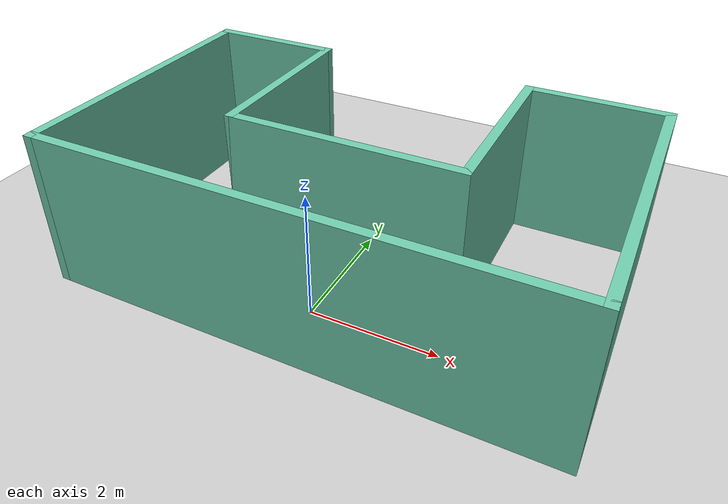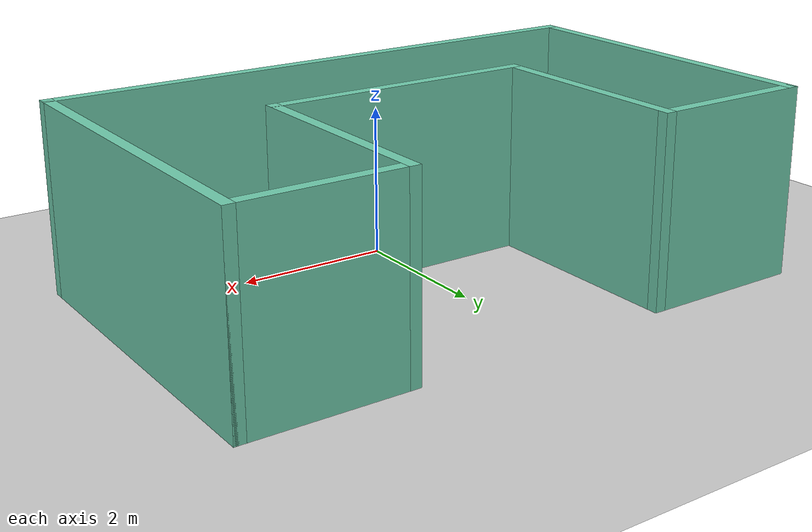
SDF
<sdf version="1.6">
 <world name="default">
  <light name="sun" type="directional">
   <pose>0 0 10 0 -0 0</pose>
   <diffuse>0.8 0.8 0.8 1</diffuse>
   <specular>0.2 0.2 0.2 1</specular>
   <attenuation>
    <range>1000</range>
    <constant>0.9</constant>
    <linear>0.01</linear>
    <quadratic>0.001</quadratic>
   </attenuation>
   <direction>-0.5 0.1 -0.9</direction>
  </light>
  <model name="ground_plane">
   <static>1</static>
   <link name="link">
    <collision name="collision">
     <geometry><plane><normal>0 0 1</normal><size>100 100</size></plane></geometry>
     <surface>
      <contact><collide_bitmask>65535</collide_bitmask></contact>
      <friction><ode><mu>100</mu><mu2>50</mu2></ode></friction>
     </surface>
    </collision>
    <visual name="visual">
     <cast_shadows>0</cast_shadows>
     <geometry><plane><normal>0 0 1</normal><size>100 100</size></plane></geometry>
     <material>
      <script><uri>file://media/materials/scripts/gazebo.material</uri><name>Gazebo/Grey</name></script>
     </material>
    </visual>
   </link>
  </model>
  <gravity>0 0 -9.8</gravity>
  <magnetic_field>6e-06 2.3e-05 -4.2e-05</magnetic_field>
  <atmosphere type="adiabatic"/>
  <physics name="default_physics" default="0" type="ode">
   <max_step_size>0.001</max_step_size>
   <real_time_factor>1</real_time_factor>
   <real_time_update_rate>1000</real_time_update_rate>
  </physics>
  <scene><ambient>0.4 0.4 0.4 1</ambient><background>0.7 0.7 0.7 1</background><shadows>1</shadows></scene>
  <spherical_coordinates>
   <surface_model>EARTH_WGS84</surface_model>
   <latitude_deg>0</latitude_deg>
   <longitude_deg>0</longitude_deg>
   <elevation>0</elevation>
   <heading_deg>0</heading_deg>
  </spherical_coordinates>
  <model name="smallU">
   <pose>0.126042 1.32858 0 0 -0 0</pose>
   <link name="Wall_17">
    <collision name="Wall_17_Collision">
     <geometry><box><size>3.75 0.15 2.5</size></box></geometry>
     <pose>0 0 1.25 0 -0 0</pose>
    </collision>
    <visual name="Wall_17_Visual">
     <pose>0 0 1.25 0 -0 0</pose>
     <geometry><box><size>3.75 0.15 2.5</size></box></geometry>
     <material>
      <script><uri>file://media/materials/scripts/gazebo.material</uri><name>Gazebo/Grey</name></script>
      <ambient>0.435294 0.796078 0.67451 1</ambient>
     </material>
     <meta><layer>0</layer></meta>
    </visual>
    <pose>0 -0.55 0 0 -0 0</pose>
   </link>
   <link name="Wall_19">
    <collision name="Wall_19_Collision">
     <geometry><box><size>3 0.15 2.5</size></box></geometry>
     <pose>0 0 1.25 0 -0 0</pose>
    </collision>
    <visual name="Wall_19_Visual">
     <pose>0 0 1.25 0 -0 0</pose>
     <geometry><box><size>3 0.15 2.5</size></box></geometry>
     <material>
      <script><uri>file://media/materials/scripts/gazebo.material</uri><name>Gazebo/Grey</name></script>
      <ambient>0.435294 0.796078 0.67451 1</ambient>
     </material>
     <meta><layer>0</layer></meta>
    </visual>
    <pose>1.8 0.875 0 0 -0 1.5708</pose>
   </link>
   <link name="Wall_20">
    <collision name="Wall_20_Collision">
     <geometry><box><size>2.25 0.15 2.5</size></box></geometry>
     <pose>0 0 1.25 0 -0 0</pose>
    </collision>
    <visual name="Wall_20_Visual">
     <pose>0 0 1.25 0 -0 0</pose>
     <geometry><box><size>2.25 0.15 2.5</size></box></geometry>
     <material>
      <script><uri>file://media/materials/scripts/gazebo.material</uri><name>Gazebo/Grey</name></script>
      <ambient>0.435294 0.796078 0.67451 1</ambient>
     </material>
     <meta><layer>0</layer></meta>
    </visual>
    <pose>2.85 2.3 0 0 -0 0</pose>
   </link>
   <link name="Wall_21">
    <collision name="Wall_21_Collision">
     <geometry><box><size>4.75 0.15 2.5</size></box></geometry>
     <pose>0 0 1.25 0 -0 0</pose>
    </collision>
    <visual name="Wall_21_Visual">
     <pose>0 0 1.25 0 -0 0</pose>
     <geometry><box><size>4.75 0.15 2.5</size></box></geometry>
     <material>
      <script><uri>file://media/materials/scripts/gazebo.material</uri><name>Gazebo/Grey</name></script>
      <ambient>0.435294 0.796078 0.67451 1</ambient>
     </material>
     <meta><layer>0</layer></meta>
    </visual>
    <pose>3.9 0 0 0 0 -1.5708</pose>
   </link>
   <link name="Wall_22">
    <collision name="Wall_22_Collision">
     <geometry><box><size>7.95 0.15 2.5</size></box></geometry>
     <pose>0 0 1.25 0 -0 0</pose>
    </collision>
    <visual name="Wall_22_Visual">
     <pose>0 0 1.25 0 -0 0</pose>
     <geometry><box><size>7.95 0.15 2.5</size></box></geometry>
     <material>
      <script><uri>file://media/materials/scripts/gazebo.material</uri><name>Gazebo/Grey</name></script>
      <ambient>0.435294 0.796078 0.67451 1</ambient>
     </material>
     <meta><layer>0</layer></meta>
    </visual>
    <pose>0 -2.3 0 0 -0 3.14159</pose>
   </link>
   <link name="Wall_7">
    <collision name="Wall_7_Collision">
     <geometry><box><size>3 0.15 2.5</size></box></geometry>
     <pose>0 0 1.25 0 -0 0</pose>
    </collision>
    <visual name="Wall_7_Visual">
     <pose>0 0 1.25 0 -0 0</pose>
     <geometry><box><size>3 0.15 2.5</size></box></geometry>
     <material>
      <script><uri>file://media/materials/scripts/gazebo.material</uri><name>Gazebo/Grey</name></script>
      <ambient>0.435294 0.796078 0.67451 1</ambient>
     </material>
     <meta><layer>0</layer></meta>
    </visual>
    <pose>-1.8 0.875 0 0 -0 1.5708</pose>
   </link>
   <link name="Wall_8">
    <collision name="Wall_8_Collision">
     <geometry><box><size>2.25 0.15 2.5</size></box></geometry>
     <pose>0 0 1.25 0 -0 0</pose>
    </collision>
    <visual name="Wall_8_Visual">
     <pose>0 0 1.25 0 -0 0</pose>
     <geometry><box><size>2.25 0.15 2.5</size></box></geometry>
     <material>
      <script><uri>file://media/materials/scripts/gazebo.material</uri><name>Gazebo/Grey</name></script>
      <ambient>0.435294 0.796078 0.67451 1</ambient>
     </material>
     <meta><layer>0</layer></meta>
    </visual>
    <pose>-2.85 2.3 0 0 -0 3.14159</pose>
   </link>
   <link name="Wall_9">
    <collision name="Wall_9_Collision">
     <geometry><box><size>4.75 0.15 2.5</size></box></geometry>
     <pose>0 0 1.25 0 -0 0</pose>
    </collision>
    <visual name="Wall_9_Visual">
     <pose>0 0 1.25 0 -0 0</pose>
     <geometry><box><size>4.75 0.15 2.5</size></box></geometry>
     <material>
      <script><uri>file://media/materials/scripts/gazebo.material</uri><name>Gazebo/Grey</name></script>
      <ambient>0.435294 0.796078 0.67451 1</ambient>
     </material>
     <meta><layer>0</layer></meta>
    </visual>
    <pose>-3.9 0 0 0 0 -1.5708</pose>
   </link>
   <static>1</static>
  </model>
 </world>
</sdf>
